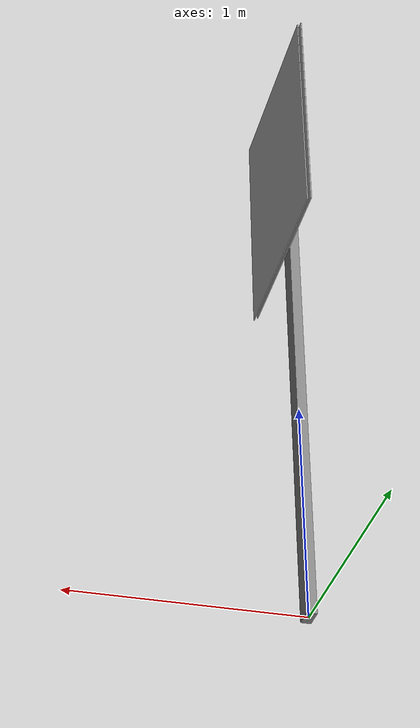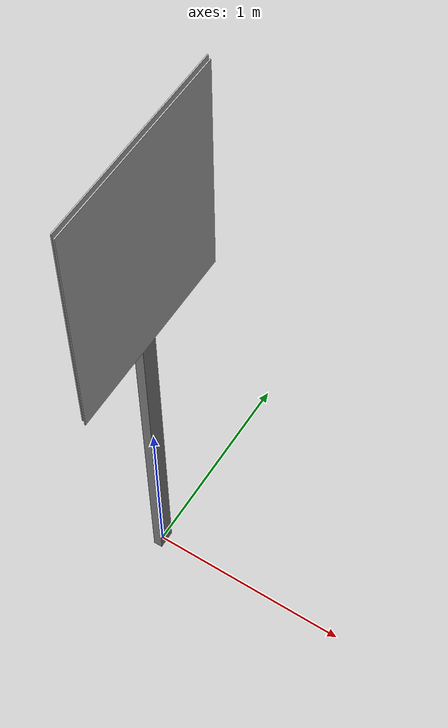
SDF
<?xml version="1.0" ?>
<sdf version="1.5">
  <model name="right_turn_only">
    <link name="link">
      <collision name="collision">
        <geometry>
          <mesh>
            <scale>1 1 1</scale>
            <uri>model://right_turn_only/meshes/right_turn_only.dae</uri>
          </mesh>
        </geometry>
      </collision>
      <visual name="visual">
        <geometry>
          <mesh>
            <scale>1 1 1</scale>
            <uri>model://right_turn_only/meshes/right_turn_only.dae</uri>
          </mesh>
        </geometry>
      </visual>
    </link>
  </model>
</sdf>
